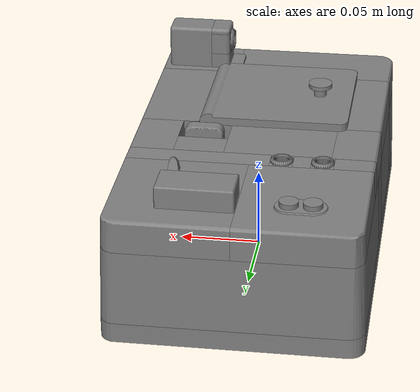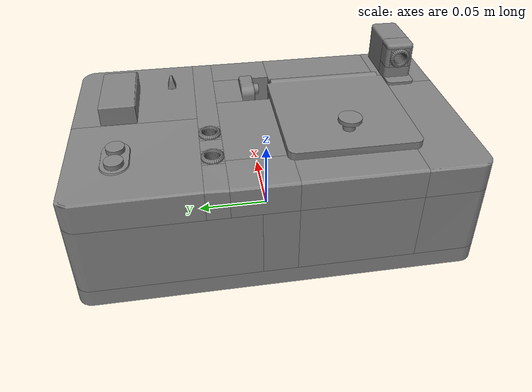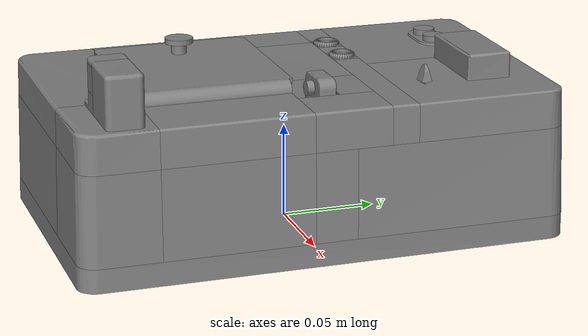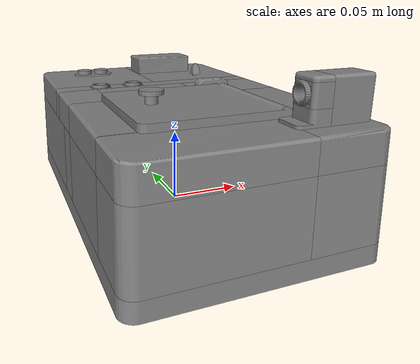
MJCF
<mujoco model="task_board">
    <compiler angle="radian" meshdir="task_board/stl/" autolimits="true" fusestatic="false" balanceinertia="true" discardvisual="true" boundmass="0.000001" boundinertia="0.000001"/>
    <statistic meansize="0.0363884" extent="0.339173" center="2.54871e-05 0.000813845 0.00619555"/>
    <asset>
        <mesh name="task_board_part_1" file="task_board_part_1.stl"/>
        <mesh name="task_board_part_2" file="task_board_part_2.stl"/>
        <mesh name="task_board_part_3" file="task_board_part_3.stl"/>
        <mesh name="task_board_part_4" file="task_board_part_4.stl"/>
        <mesh name="task_board_part_5" file="task_board_part_5.stl"/>
        <mesh name="task_board_part_6" file="task_board_part_6.stl"/>
        <mesh name="task_board_part_7" file="task_board_part_7.stl"/>
        <mesh name="task_board_part_8" file="task_board_part_8.stl"/>
        <mesh name="task_board_part_9" file="task_board_part_9.stl"/>
        <mesh name="task_board_part_10" file="task_board_part_10.stl"/>
        <mesh name="task_board_part_11" file="task_board_part_11.stl"/>
        <mesh name="task_board_part_12" file="task_board_part_12.stl"/>
        <mesh name="task_board_part_13" file="task_board_part_13.stl"/>
        <mesh name="task_board_part_14" file="task_board_part_14.stl"/>
        <mesh name="task_board_part_15" file="task_board_part_15.stl"/>
        <mesh name="task_board_part_16" file="task_board_part_16.stl"/>
        <mesh name="task_board_part_17" file="task_board_part_17.stl"/>
        <mesh name="task_board_part_18" file="task_board_part_18.stl"/>
        <mesh name="task_board_part_19" file="task_board_part_19.stl"/>
        <mesh name="task_board_part_20" file="task_board_part_20.stl"/>
        <mesh name="task_board_part_21" file="task_board_part_21.stl"/>
        <mesh name="task_board_part_22" file="task_board_part_22.stl"/>
        <mesh name="task_board_part_23" file="task_board_part_23.stl"/>
        <mesh name="task_board_part_24" file="task_board_part_24.stl"/>
        <mesh name="task_board_part_25" file="task_board_part_25.stl"/>
        <mesh name="task_board_part_26" file="task_board_part_26.stl"/>
        <mesh name="task_board_part_27" file="task_board_part_27.stl"/>
        <mesh name="task_board_part_28" file="task_board_part_28.stl"/>
        <mesh name="task_board_part_29" file="task_board_part_29.stl"/>
        <mesh name="task_board_part_30" file="task_board_part_30.stl"/>
        <mesh name="task_board_part_31" file="task_board_part_31.stl"/>
        <mesh name="task_board_part_32" file="task_board_part_32.stl"/>
        <mesh name="task_board_part_33" file="task_board_part_33.stl"/>
        <mesh name="task_board_part_34" file="task_board_part_34.stl"/>
        <mesh name="task_board_part_35" file="task_board_part_35.stl"/>
        <mesh name="task_board_part_36" file="task_board_part_36.stl"/>
        <mesh name="task_board_part_37" file="task_board_part_37.stl"/>
        <mesh name="task_board_part_38" file="task_board_part_38.stl"/>
        <mesh name="task_board_part_39" file="task_board_part_39.stl"/>
        <mesh name="task_board_part_40" file="task_board_part_40.stl"/>
        <mesh name="task_board_part_41" file="task_board_part_41.stl"/>
        <mesh name="task_board_part_42" file="task_board_part_42.stl"/>
        <mesh name="task_board_clock" file="task_board_clock.stl"/>
        <mesh name="task_board_hole_side" file="task_board_hole_side.stl"/>
        <mesh name="task_board_lid" file="task_board_lid.stl"/>
        <mesh name="task_board_lid_hinge" file="task_board_lid_hinge.stl"/>
        <mesh name="task_board_slider" file="task_board_slider.stl"/>
        <mesh name="task_board_button" file="task_board_button.stl"/>
    </asset>
    <worldbody>
        <body name="task_board">
            <body name="task_board_main">
                <geom type="mesh" mesh="task_board_part_1"/>
                <geom type="mesh" mesh="task_board_part_2"/>
                <geom type="mesh" mesh="task_board_part_3"/>
                <geom type="mesh" mesh="task_board_part_4"/>
                <geom type="mesh" mesh="task_board_part_5"/>
                <geom type="mesh" mesh="task_board_part_6"/>
                <geom type="mesh" mesh="task_board_part_7"/>
                <geom type="mesh" mesh="task_board_part_8"/>
                <geom type="mesh" mesh="task_board_part_9"/>
                <geom type="mesh" mesh="task_board_part_10"/>
                <geom type="mesh" mesh="task_board_part_11"/>
                <geom type="mesh" mesh="task_board_part_12"/>
                <geom type="mesh" mesh="task_board_part_13"/>
                <geom type="mesh" mesh="task_board_part_14"/>
                <geom type="mesh" mesh="task_board_part_15"/>
                <geom type="mesh" mesh="task_board_part_16"/>
                <geom type="mesh" mesh="task_board_part_17"/>
                <geom type="mesh" mesh="task_board_part_18"/>
                <geom type="mesh" mesh="task_board_part_19"/>
                <geom type="mesh" mesh="task_board_part_20"/>
                <geom type="mesh" mesh="task_board_part_21"/>
                <geom type="mesh" mesh="task_board_part_22"/>
                <geom type="mesh" mesh="task_board_part_23"/>
                <geom type="mesh" mesh="task_board_part_24"/>
                <geom type="mesh" mesh="task_board_part_25"/>
                <geom type="mesh" mesh="task_board_part_26"/>
                <geom type="mesh" mesh="task_board_part_27"/>
                <geom type="mesh" mesh="task_board_part_28"/>
                <geom type="mesh" mesh="task_board_part_29"/>
                <geom type="mesh" mesh="task_board_part_30"/>
                <geom type="mesh" mesh="task_board_part_31"/>
                <geom type="mesh" mesh="task_board_part_32"/>
                <geom type="mesh" mesh="task_board_part_33"/>
                <geom type="mesh" mesh="task_board_part_34"/>
                <geom type="mesh" mesh="task_board_part_35"/>
                <geom type="mesh" mesh="task_board_part_36"/>
                <geom type="mesh" mesh="task_board_part_37"/>
                <geom type="mesh" mesh="task_board_part_38"/>
                <geom type="mesh" mesh="task_board_part_39"/>
                <geom type="mesh" mesh="task_board_part_40"/>
                <geom type="mesh" mesh="task_board_part_41"/>
                <geom type="mesh" mesh="task_board_part_42"/>
                <body name="task_board_clock" pos="0.02361 0.09598 0.086058">
                    <geom type="mesh" mesh="task_board_clock"/>
                </body>
                <body name="task_board_hole_1" pos="-0.0191 0.039 0.0734">
                    <geom type="mesh" mesh="task_board_hole_side"/>
                    <geom quat="0.995185 0 0 0.0980171" type="mesh" mesh="task_board_hole_side"/>
                    <geom quat="0.980785 0 0 0.19509" type="mesh" mesh="task_board_hole_side"/>
                    <geom quat="0.95694 0 0 0.290285" type="mesh" mesh="task_board_hole_side"/>
                    <geom quat="0.92388 0 0 0.382683" type="mesh" mesh="task_board_hole_side"/>
                    <geom quat="0.881921 0 0 0.471397" type="mesh" mesh="task_board_hole_side"/>
                    <geom quat="0.83147 0 0 0.55557" type="mesh" mesh="task_board_hole_side"/>
                    <geom quat="0.77301 0 0 0.634393" type="mesh" mesh="task_board_hole_side"/>
                    <geom quat="0.707107 0 0 0.707107" type="mesh" mesh="task_board_hole_side"/>
                    <geom quat="0.634393 0 0 0.77301" type="mesh" mesh="task_board_hole_side"/>
                    <geom quat="0.55557 0 0 0.83147" type="mesh" mesh="task_board_hole_side"/>
                    <geom quat="0.471397 0 0 0.881921" type="mesh" mesh="task_board_hole_side"/>
                    <geom quat="0.382683 0 0 0.92388" type="mesh" mesh="task_board_hole_side"/>
                    <geom quat="0.290285 0 0 0.95694" type="mesh" mesh="task_board_hole_side"/>
                    <geom quat="0.19509 0 0 0.980785" type="mesh" mesh="task_board_hole_side"/>
                    <geom quat="0.0980171 0 0 0.995185" type="mesh" mesh="task_board_hole_side"/>
                    <geom quat="0 0 0 1" type="mesh" mesh="task_board_hole_side"/>
                    <geom quat="-0.0980171 0 0 0.995185" type="mesh" mesh="task_board_hole_side"/>
                    <geom quat="-0.19509 0 0 0.980785" type="mesh" mesh="task_board_hole_side"/>
                    <geom quat="-0.290285 0 0 0.95694" type="mesh" mesh="task_board_hole_side"/>
                    <geom quat="-0.382683 0 0 0.92388" type="mesh" mesh="task_board_hole_side"/>
                    <geom quat="-0.471397 0 0 0.881921" type="mesh" mesh="task_board_hole_side"/>
                    <geom quat="-0.55557 0 0 0.83147" type="mesh" mesh="task_board_hole_side"/>
                    <geom quat="-0.634393 0 0 0.77301" type="mesh" mesh="task_board_hole_side"/>
                    <geom quat="-0.707107 0 0 0.707107" type="mesh" mesh="task_board_hole_side"/>
                    <geom quat="-0.77301 0 0 0.634393" type="mesh" mesh="task_board_hole_side"/>
                    <geom quat="-0.83147 0 0 0.55557" type="mesh" mesh="task_board_hole_side"/>
                    <geom quat="-0.881921 0 0 0.471397" type="mesh" mesh="task_board_hole_side"/>
                    <geom quat="-0.92388 0 0 0.382683" type="mesh" mesh="task_board_hole_side"/>
                    <geom quat="-0.95694 0 0 0.290285" type="mesh" mesh="task_board_hole_side"/>
                    <geom quat="-0.980785 0 0 0.19509" type="mesh" mesh="task_board_hole_side"/>
                    <geom quat="-0.995185 0 0 0.0980171" type="mesh" mesh="task_board_hole_side"/>
                </body>
                <body name="task_board_hole_2" pos="-0.044 0.039 0.0734">
                    <geom type="mesh" mesh="task_board_hole_side"/>
                    <geom quat="0.995185 0 0 0.0980171" type="mesh" mesh="task_board_hole_side"/>
                    <geom quat="0.980785 0 0 0.19509" type="mesh" mesh="task_board_hole_side"/>
                    <geom quat="0.95694 0 0 0.290285" type="mesh" mesh="task_board_hole_side"/>
                    <geom quat="0.92388 0 0 0.382683" type="mesh" mesh="task_board_hole_side"/>
                    <geom quat="0.881921 0 0 0.471397" type="mesh" mesh="task_board_hole_side"/>
                    <geom quat="0.83147 0 0 0.55557" type="mesh" mesh="task_board_hole_side"/>
                    <geom quat="0.77301 0 0 0.634393" type="mesh" mesh="task_board_hole_side"/>
                    <geom quat="0.707107 0 0 0.707107" type="mesh" mesh="task_board_hole_side"/>
                    <geom quat="0.634393 0 0 0.77301" type="mesh" mesh="task_board_hole_side"/>
                    <geom quat="0.55557 0 0 0.83147" type="mesh" mesh="task_board_hole_side"/>
                    <geom quat="0.471397 0 0 0.881921" type="mesh" mesh="task_board_hole_side"/>
                    <geom quat="0.382683 0 0 0.92388" type="mesh" mesh="task_board_hole_side"/>
                    <geom quat="0.290285 0 0 0.95694" type="mesh" mesh="task_board_hole_side"/>
                    <geom quat="0.19509 0 0 0.980785" type="mesh" mesh="task_board_hole_side"/>
                    <geom quat="0.0980171 0 0 0.995185" type="mesh" mesh="task_board_hole_side"/>
                    <geom quat="0 0 0 1" type="mesh" mesh="task_board_hole_side"/>
                    <geom quat="-0.0980171 0 0 0.995185" type="mesh" mesh="task_board_hole_side"/>
                    <geom quat="-0.19509 0 0 0.980785" type="mesh" mesh="task_board_hole_side"/>
                    <geom quat="-0.290285 0 0 0.95694" type="mesh" mesh="task_board_hole_side"/>
                    <geom quat="-0.382683 0 0 0.92388" type="mesh" mesh="task_board_hole_side"/>
                    <geom quat="-0.471397 0 0 0.881921" type="mesh" mesh="task_board_hole_side"/>
                    <geom quat="-0.55557 0 0 0.83147" type="mesh" mesh="task_board_hole_side"/>
                    <geom quat="-0.634393 0 0 0.77301" type="mesh" mesh="task_board_hole_side"/>
                    <geom quat="-0.707107 0 0 0.707107" type="mesh" mesh="task_board_hole_side"/>
                    <geom quat="-0.77301 0 0 0.634393" type="mesh" mesh="task_board_hole_side"/>
                    <geom quat="-0.83147 0 0 0.55557" type="mesh" mesh="task_board_hole_side"/>
                    <geom quat="-0.881921 0 0 0.471397" type="mesh" mesh="task_board_hole_side"/>
                    <geom quat="-0.92388 0 0 0.382683" type="mesh" mesh="task_board_hole_side"/>
                    <geom quat="-0.95694 0 0 0.290285" type="mesh" mesh="task_board_hole_side"/>
                    <geom quat="-0.980785 0 0 0.19509" type="mesh" mesh="task_board_hole_side"/>
                    <geom quat="-0.995185 0 0 0.0980171" type="mesh" mesh="task_board_hole_side"/>
                </body>
                <body name="task_board_hole_3" pos="0.037334 -0.102 0.0963" quat="0.707107 0 -0.707107 0">
                    <geom type="mesh" mesh="task_board_hole_side"/>
                    <geom quat="0.995185 0 0 0.0980171" type="mesh" mesh="task_board_hole_side"/>
                    <geom quat="0.980785 0 0 0.19509" type="mesh" mesh="task_board_hole_side"/>
                    <geom quat="0.95694 0 0 0.290285" type="mesh" mesh="task_board_hole_side"/>
                    <geom quat="0.92388 0 0 0.382683" type="mesh" mesh="task_board_hole_side"/>
                    <geom quat="0.881921 0 0 0.471397" type="mesh" mesh="task_board_hole_side"/>
                    <geom quat="0.83147 0 0 0.55557" type="mesh" mesh="task_board_hole_side"/>
                    <geom quat="0.77301 0 0 0.634393" type="mesh" mesh="task_board_hole_side"/>
                    <geom quat="0.707107 0 0 0.707107" type="mesh" mesh="task_board_hole_side"/>
                    <geom quat="0.634393 0 0 0.77301" type="mesh" mesh="task_board_hole_side"/>
                    <geom quat="0.55557 0 0 0.83147" type="mesh" mesh="task_board_hole_side"/>
                    <geom quat="0.471397 0 0 0.881921" type="mesh" mesh="task_board_hole_side"/>
                    <geom quat="0.382683 0 0 0.92388" type="mesh" mesh="task_board_hole_side"/>
                    <geom quat="0.290285 0 0 0.95694" type="mesh" mesh="task_board_hole_side"/>
                    <geom quat="0.19509 0 0 0.980785" type="mesh" mesh="task_board_hole_side"/>
                    <geom quat="0.0980171 0 0 0.995185" type="mesh" mesh="task_board_hole_side"/>
                    <geom quat="0 0 0 1" type="mesh" mesh="task_board_hole_side"/>
                    <geom quat="-0.0980171 0 0 0.995185" type="mesh" mesh="task_board_hole_side"/>
                    <geom quat="-0.19509 0 0 0.980785" type="mesh" mesh="task_board_hole_side"/>
                    <geom quat="-0.290285 0 0 0.95694" type="mesh" mesh="task_board_hole_side"/>
                    <geom quat="-0.382683 0 0 0.92388" type="mesh" mesh="task_board_hole_side"/>
                    <geom quat="-0.471397 0 0 0.881921" type="mesh" mesh="task_board_hole_side"/>
                    <geom quat="-0.55557 0 0 0.83147" type="mesh" mesh="task_board_hole_side"/>
                    <geom quat="-0.634393 0 0 0.77301" type="mesh" mesh="task_board_hole_side"/>
                    <geom quat="-0.707107 0 0 0.707107" type="mesh" mesh="task_board_hole_side"/>
                    <geom quat="-0.77301 0 0 0.634393" type="mesh" mesh="task_board_hole_side"/>
                    <geom quat="-0.83147 0 0 0.55557" type="mesh" mesh="task_board_hole_side"/>
                    <geom quat="-0.881921 0 0 0.471397" type="mesh" mesh="task_board_hole_side"/>
                    <geom quat="-0.92388 0 0 0.382683" type="mesh" mesh="task_board_hole_side"/>
                    <geom quat="-0.95694 0 0 0.290285" type="mesh" mesh="task_board_hole_side"/>
                    <geom quat="-0.980785 0 0 0.19509" type="mesh" mesh="task_board_hole_side"/>
                    <geom quat="-0.995185 0 0 0.0980171" type="mesh" mesh="task_board_hole_side"/>
                </body>
                <body name="task_board_lid" pos="0.033026 -0.0472 0.079405">
                    <joint name="task_board_lid_joint" pos="0 0 0" axis="0 1 0" range="0 2.07293"/>
                    <geom type="mesh" mesh="task_board_lid"/>
                    <geom type="mesh" mesh="task_board_lid_hinge"/>
                    <body name="task_board_lid_knob" pos="-0.066776 0 0.010587">
                        <geom size="0.004 0.003" pos="0 0 -0.00255" type="cylinder"/>
                        <geom size="0.007486 0.00135" pos="0 0 0.00155" type="cylinder"/>
                    </body>
                </body>
                <body name="task_board_slider" pos="0.04301 0.061594 0.082959">
                    <joint name="task_board_slider_joint" pos="0 0 0" axis="1 0 0" type="slide" range="-0.025 0.01"/>
                    <geom type="mesh" mesh="task_board_slider"/>
                </body>
                <body name="task_board_button_1" pos="-0.043957 0.09625 0.0835">
                    <joint name="task_board_button_1_joint" pos="0 0 0" axis="0 0 1" type="slide" range="-0.003 0"/>
                    <geom type="mesh" mesh="task_board_button"/>
                </body>
                <body name="task_board_button_2" pos="-0.02995 0.09625 0.0835">
                    <joint name="task_board_button_2_joint" pos="0 0 0" axis="0 0 1" type="slide" range="-0.003 0"/>
                    <geom type="mesh" mesh="task_board_button"/>
                </body>
            </body>
        </body>
    </worldbody>
    <equality/>
    <contact>
        <exclude body1="task_board_lid" body2="task_board_main"/>
        <exclude body1="task_board_slider" body2="task_board_main"/>
        <exclude body1="task_board_button_1" body2="task_board_main"/>
        <exclude body1="task_board_button_2" body2="task_board_main"/>
        <exclude body1="task_board_button_1" body2="task_board_clock"/>
        <exclude body1="task_board_button_1" body2="task_board_hole_1"/>
        <exclude body1="task_board_button_1" body2="task_board_hole_2"/>
        <exclude body1="task_board_button_1" body2="task_board_hole_3"/>
        <exclude body1="task_board_button_1" body2="task_board_lid_knob"/>
        <exclude body1="task_board_button_2" body2="task_board_clock"/>
        <exclude body1="task_board_button_2" body2="task_board_hole_1"/>
        <exclude body1="task_board_button_2" body2="task_board_hole_2"/>
        <exclude body1="task_board_button_2" body2="task_board_hole_3"/>
        <exclude body1="task_board_button_2" body2="task_board_lid_knob"/>
        <exclude body1="task_board_lid" body2="task_board_clock"/>
        <exclude body1="task_board_lid" body2="task_board_hole_1"/>
        <exclude body1="task_board_lid" body2="task_board_hole_2"/>
        <exclude body1="task_board_lid" body2="task_board_hole_3"/>
        <exclude body1="task_board_lid" body2="task_board_lid_knob"/>
        <exclude body1="task_board_main" body2="task_board_lid_knob"/>
        <exclude body1="task_board_slider" body2="task_board_clock"/>
        <exclude body1="task_board_slider" body2="task_board_hole_1"/>
        <exclude body1="task_board_slider" body2="task_board_hole_2"/>
        <exclude body1="task_board_slider" body2="task_board_hole_3"/>
        <exclude body1="task_board_slider" body2="task_board_lid_knob"/>
    </contact>
</mujoco>
